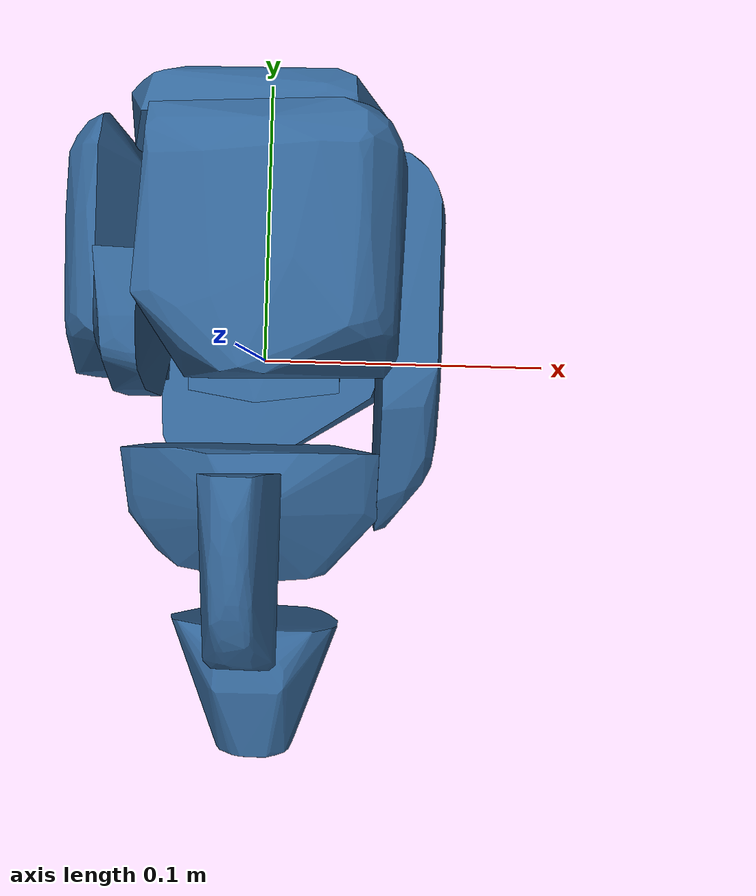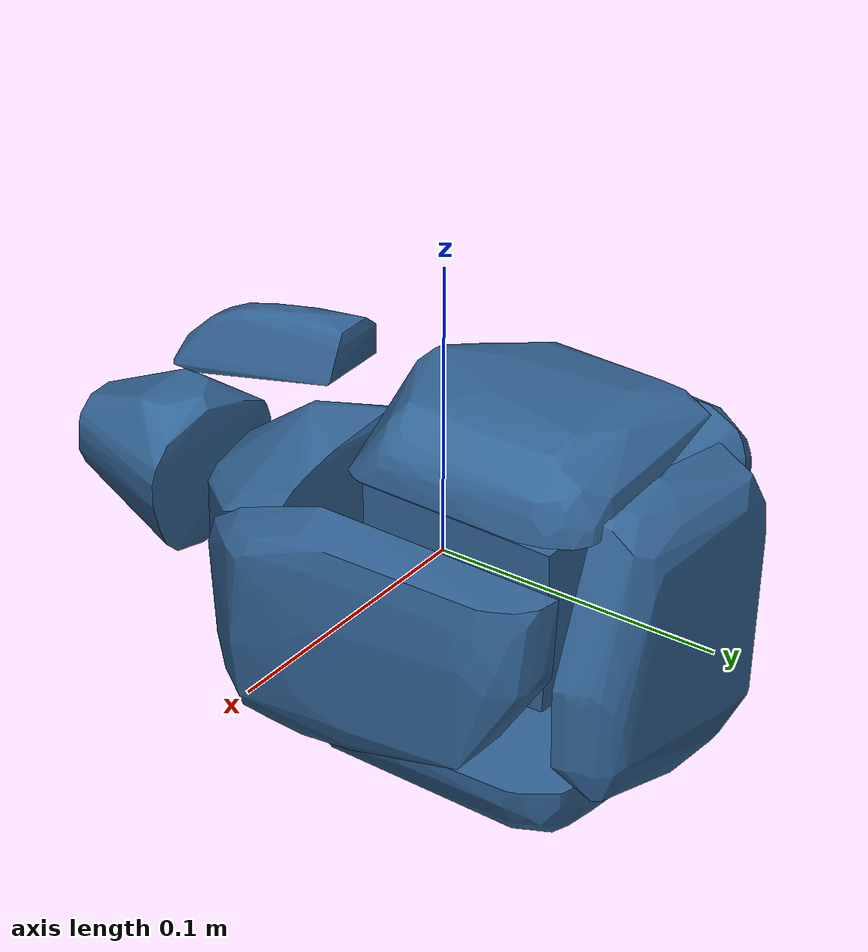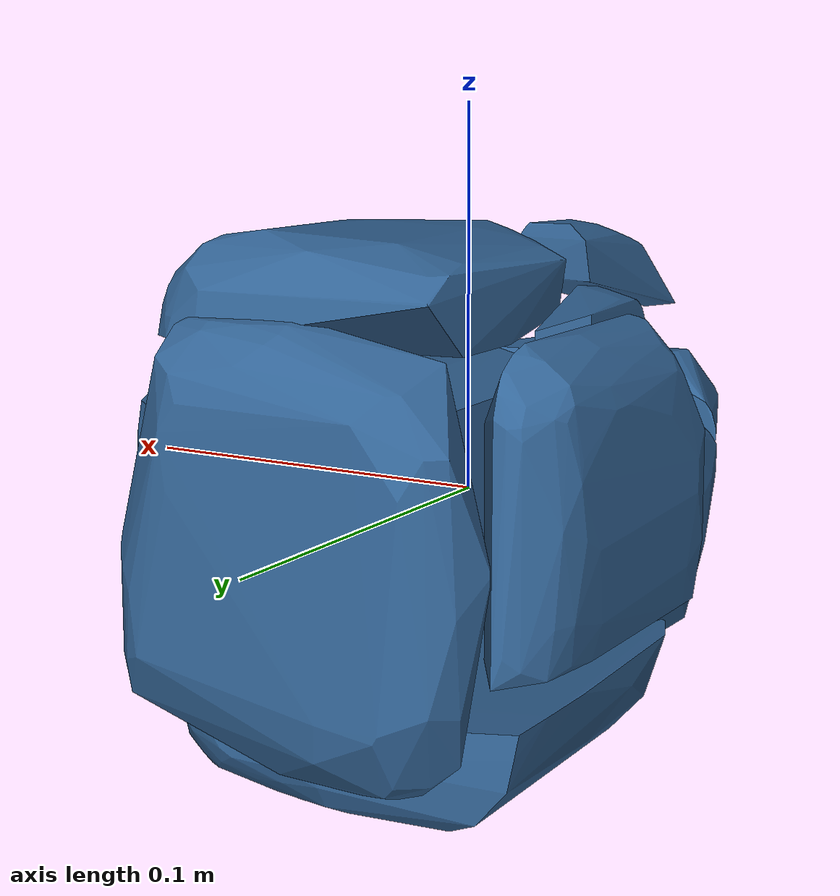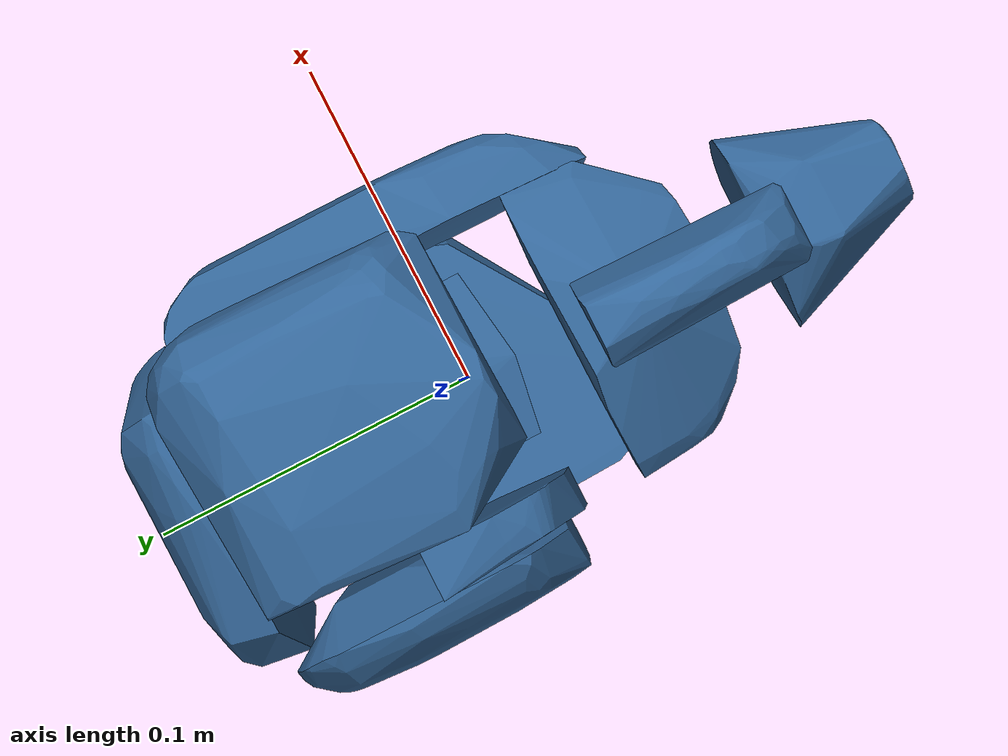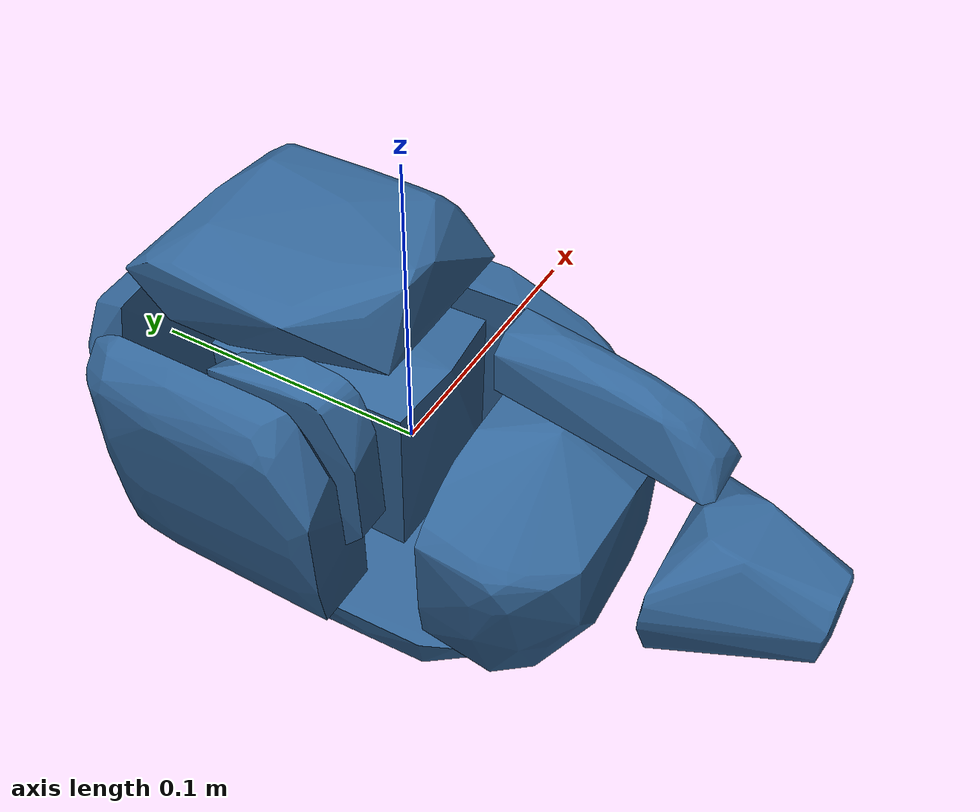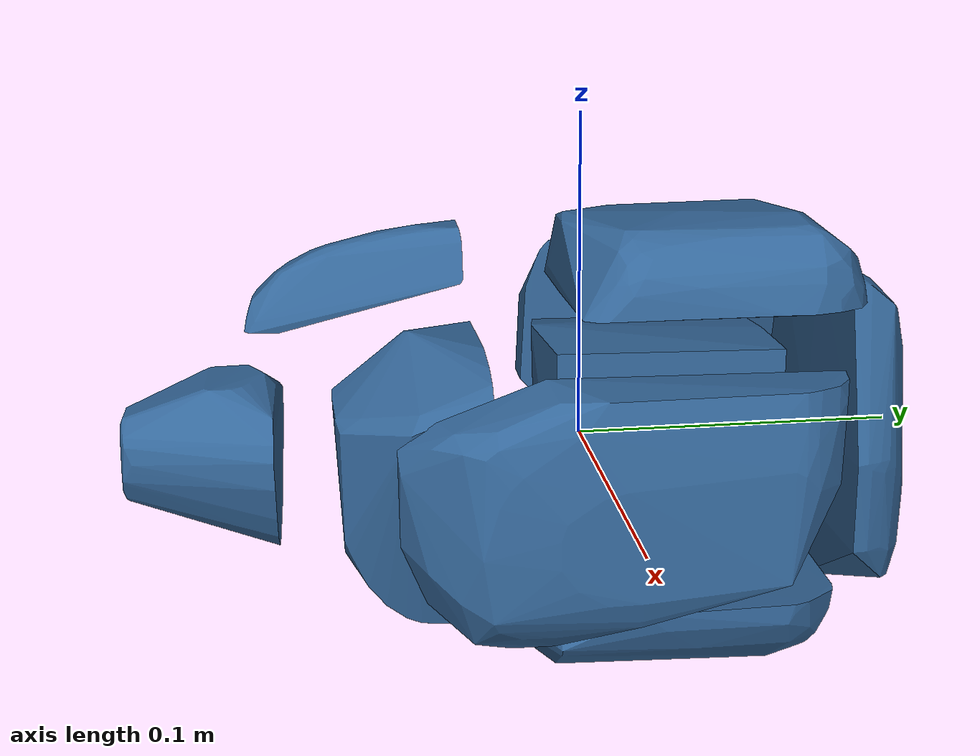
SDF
<?xml version='1.0' encoding='UTF-8'?>
<!-- This SDF was autogenerated by obj_to_drake_sdf.py -->
<sdf version="1.7">
  <model name="gallon_milk">
    <link name="gallon_milk">
      <inertial>
        <pose>0 0 0 0 0 0</pose>
        <mass>0.05</mass>
        <inertia>
          <ixx>0.00022554731</ixx>
          <iyy>0.00013714798</iyy>
          <izz>0.00021518032</izz>
          <ixy>9.3258274e-07</ixy>
          <ixz>7.9005897e-07</ixz>
          <iyz>-8.9055509e-06</iyz>
        </inertia>
      </inertial>
      <visual name="convex_0">
        <pose>0 0 0 0 0 0</pose>
        <geometry>
          <mesh>
            <uri>gallon_milk_convex_0.obj</uri>
          </mesh>
        </geometry>
        <material>
          <diffuse>0.19607843137254902 0.39215686274509803 0.5882352941176471 1</diffuse>
        </material>
      </visual>
      <collision name="convex_0_volume">
        <pose>0 0 0 0 0 0</pose>
        <geometry>
          <mesh>
            <uri>gallon_milk_convex_0.obj</uri>
          </mesh>
        </geometry>
        <drake:proximity_properties xmlns:drake="uri:drake">
          <drake:compliant_hydroelastic/>
          <drake:hydroelastic_modulus> 3.0e7 </drake:hydroelastic_modulus>
          <drake:mesh_resolution_hint> 0.02 </drake:mesh_resolution_hint>
          <drake:hunt_crossley_dissipation>10</drake:hunt_crossley_dissipation>
          <drake:mu_dynamic>0.3</drake:mu_dynamic>
        </drake:proximity_properties>
      </collision>
      <visual name="convex_1">
        <pose>0 0 0 0 0 0</pose>
        <geometry>
          <mesh>
            <uri>gallon_milk_convex_1.obj</uri>
          </mesh>
        </geometry>
        <material>
          <diffuse>0.19607843137254902 0.39215686274509803 0.5882352941176471 1</diffuse>
        </material>
      </visual>
      <collision name="convex_1_volume">
        <pose>0 0 0 0 0 0</pose>
        <geometry>
          <mesh>
            <uri>gallon_milk_convex_1.obj</uri>
          </mesh>
        </geometry>
        <drake:proximity_properties xmlns:drake="uri:drake">
          <drake:compliant_hydroelastic/>
          <drake:hydroelastic_modulus> 3.0e7 </drake:hydroelastic_modulus>
          <drake:mesh_resolution_hint> 0.02 </drake:mesh_resolution_hint>
          <drake:hunt_crossley_dissipation>10</drake:hunt_crossley_dissipation>
          <drake:mu_dynamic>0.3</drake:mu_dynamic>
        </drake:proximity_properties>
      </collision>
      <visual name="convex_2">
        <pose>0 0 0 0 0 0</pose>
        <geometry>
          <mesh>
            <uri>gallon_milk_convex_2.obj</uri>
          </mesh>
        </geometry>
        <material>
          <diffuse>0.19607843137254902 0.39215686274509803 0.5882352941176471 1</diffuse>
        </material>
      </visual>
      <collision name="convex_2_volume">
        <pose>0 0 0 0 0 0</pose>
        <geometry>
          <mesh>
            <uri>gallon_milk_convex_2.obj</uri>
          </mesh>
        </geometry>
        <drake:proximity_properties xmlns:drake="uri:drake">
          <drake:compliant_hydroelastic/>
          <drake:hydroelastic_modulus> 3.0e7 </drake:hydroelastic_modulus>
          <drake:mesh_resolution_hint> 0.02 </drake:mesh_resolution_hint>
          <drake:hunt_crossley_dissipation>10</drake:hunt_crossley_dissipation>
          <drake:mu_dynamic>0.3</drake:mu_dynamic>
        </drake:proximity_properties>
      </collision>
      <visual name="convex_3">
        <pose>0 0 0 0 0 0</pose>
        <geometry>
          <mesh>
            <uri>gallon_milk_convex_3.obj</uri>
          </mesh>
        </geometry>
        <material>
          <diffuse>0.19607843137254902 0.39215686274509803 0.5882352941176471 1</diffuse>
        </material>
      </visual>
      <collision name="convex_3_volume">
        <pose>0 0 0 0 0 0</pose>
        <geometry>
          <mesh>
            <uri>gallon_milk_convex_3.obj</uri>
          </mesh>
        </geometry>
        <drake:proximity_properties xmlns:drake="uri:drake">
          <drake:compliant_hydroelastic/>
          <drake:hydroelastic_modulus> 3.0e7 </drake:hydroelastic_modulus>
          <drake:mesh_resolution_hint> 0.02 </drake:mesh_resolution_hint>
          <drake:hunt_crossley_dissipation>10</drake:hunt_crossley_dissipation>
          <drake:mu_dynamic>0.3</drake:mu_dynamic>
        </drake:proximity_properties>
      </collision>
      <visual name="convex_4">
        <pose>0 0 0 0 0 0</pose>
        <geometry>
          <mesh>
            <uri>gallon_milk_convex_4.obj</uri>
          </mesh>
        </geometry>
        <material>
          <diffuse>0.19607843137254902 0.39215686274509803 0.5882352941176471 1</diffuse>
        </material>
      </visual>
      <collision name="convex_4_volume">
        <pose>0 0 0 0 0 0</pose>
        <geometry>
          <mesh>
            <uri>gallon_milk_convex_4.obj</uri>
          </mesh>
        </geometry>
        <drake:proximity_properties xmlns:drake="uri:drake">
          <drake:compliant_hydroelastic/>
          <drake:hydroelastic_modulus> 3.0e7 </drake:hydroelastic_modulus>
          <drake:mesh_resolution_hint> 0.02 </drake:mesh_resolution_hint>
          <drake:hunt_crossley_dissipation>10</drake:hunt_crossley_dissipation>
          <drake:mu_dynamic>0.3</drake:mu_dynamic>
        </drake:proximity_properties>
      </collision>
      <visual name="convex_5">
        <pose>0 0 0 0 0 0</pose>
        <geometry>
          <mesh>
            <uri>gallon_milk_convex_5.obj</uri>
          </mesh>
        </geometry>
        <material>
          <diffuse>0.19607843137254902 0.39215686274509803 0.5882352941176471 1</diffuse>
        </material>
      </visual>
      <collision name="convex_5_volume">
        <pose>0 0 0 0 0 0</pose>
        <geometry>
          <mesh>
            <uri>gallon_milk_convex_5.obj</uri>
          </mesh>
        </geometry>
        <drake:proximity_properties xmlns:drake="uri:drake">
          <drake:compliant_hydroelastic/>
          <drake:hydroelastic_modulus> 3.0e7 </drake:hydroelastic_modulus>
          <drake:mesh_resolution_hint> 0.02 </drake:mesh_resolution_hint>
          <drake:hunt_crossley_dissipation>10</drake:hunt_crossley_dissipation>
          <drake:mu_dynamic>0.3</drake:mu_dynamic>
        </drake:proximity_properties>
      </collision>
      <visual name="convex_6">
        <pose>0 0 0 0 0 0</pose>
        <geometry>
          <mesh>
            <uri>gallon_milk_convex_6.obj</uri>
          </mesh>
        </geometry>
        <material>
          <diffuse>0.19607843137254902 0.39215686274509803 0.5882352941176471 1</diffuse>
        </material>
      </visual>
      <collision name="convex_6_volume">
        <pose>0 0 0 0 0 0</pose>
        <geometry>
          <mesh>
            <uri>gallon_milk_convex_6.obj</uri>
          </mesh>
        </geometry>
        <drake:proximity_properties xmlns:drake="uri:drake">
          <drake:compliant_hydroelastic/>
          <drake:hydroelastic_modulus> 3.0e7 </drake:hydroelastic_modulus>
          <drake:mesh_resolution_hint> 0.02 </drake:mesh_resolution_hint>
          <drake:hunt_crossley_dissipation>10</drake:hunt_crossley_dissipation>
          <drake:mu_dynamic>0.3</drake:mu_dynamic>
        </drake:proximity_properties>
      </collision>
      <visual name="convex_7">
        <pose>0 0 0 0 0 0</pose>
        <geometry>
          <mesh>
            <uri>gallon_milk_convex_7.obj</uri>
          </mesh>
        </geometry>
        <material>
          <diffuse>0.19607843137254902 0.39215686274509803 0.5882352941176471 1</diffuse>
        </material>
      </visual>
      <collision name="convex_7_volume">
        <pose>0 0 0 0 0 0</pose>
        <geometry>
          <mesh>
            <uri>gallon_milk_convex_7.obj</uri>
          </mesh>
        </geometry>
        <drake:proximity_properties xmlns:drake="uri:drake">
          <drake:compliant_hydroelastic/>
          <drake:hydroelastic_modulus> 3.0e7 </drake:hydroelastic_modulus>
          <drake:mesh_resolution_hint> 0.02 </drake:mesh_resolution_hint>
          <drake:hunt_crossley_dissipation>10</drake:hunt_crossley_dissipation>
          <drake:mu_dynamic>0.3</drake:mu_dynamic>
        </drake:proximity_properties>
      </collision>
      <visual name="convex_8">
        <pose>0 0 0 0 0 0</pose>
        <geometry>
          <mesh>
            <uri>gallon_milk_convex_8.obj</uri>
          </mesh>
        </geometry>
        <material>
          <diffuse>0.19607843137254902 0.39215686274509803 0.5882352941176471 1</diffuse>
        </material>
      </visual>
      <collision name="convex_8_volume">
        <pose>0 0 0 0 0 0</pose>
        <geometry>
          <mesh>
            <uri>gallon_milk_convex_8.obj</uri>
          </mesh>
        </geometry>
        <drake:proximity_properties xmlns:drake="uri:drake">
          <drake:compliant_hydroelastic/>
          <drake:hydroelastic_modulus> 3.0e7 </drake:hydroelastic_modulus>
          <drake:mesh_resolution_hint> 0.02 </drake:mesh_resolution_hint>
          <drake:hunt_crossley_dissipation>10</drake:hunt_crossley_dissipation>
          <drake:mu_dynamic>0.3</drake:mu_dynamic>
        </drake:proximity_properties>
      </collision>
      <visual name="convex_9">
        <pose>0 0 0 0 0 0</pose>
        <geometry>
          <mesh>
            <uri>gallon_milk_convex_9.obj</uri>
          </mesh>
        </geometry>
        <material>
          <diffuse>0.19607843137254902 0.39215686274509803 0.5882352941176471 1</diffuse>
        </material>
      </visual>
      <collision name="convex_9_volume">
        <pose>0 0 0 0 0 0</pose>
        <geometry>
          <mesh>
            <uri>gallon_milk_convex_9.obj</uri>
          </mesh>
        </geometry>
        <drake:proximity_properties xmlns:drake="uri:drake">
          <drake:compliant_hydroelastic/>
          <drake:hydroelastic_modulus> 3.0e7 </drake:hydroelastic_modulus>
          <drake:mesh_resolution_hint> 0.02 </drake:mesh_resolution_hint>
          <drake:hunt_crossley_dissipation>10</drake:hunt_crossley_dissipation>
          <drake:mu_dynamic>0.3</drake:mu_dynamic>
        </drake:proximity_properties>
      </collision>
    </link>
  </model>
</sdf>
